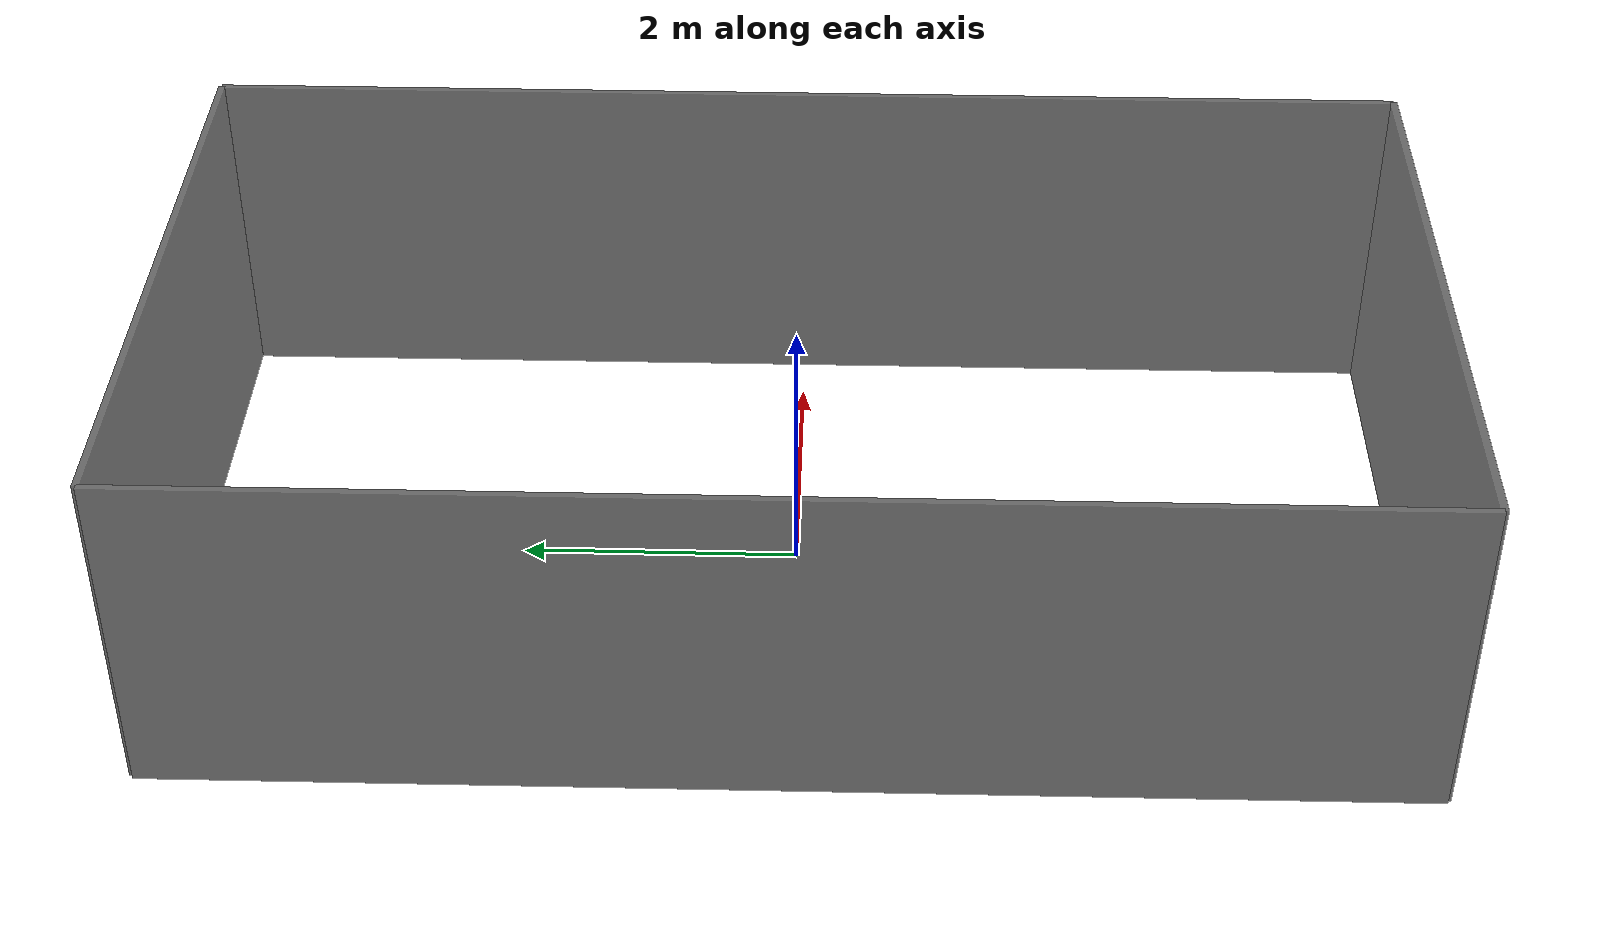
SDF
<?xml version='1.0' encoding="utf-8"?>
<sdf version='1.9'>
  <model name='walls'>
    <static>true</static>

    <!-- Wall 1, back wall of the ORL -->
    <link name='wall1'>
      <!--Position and orientation of the wall-->
      <pose>0 4.4 0 0 0 0</pose>

      <!-- Specify the shape for collisions -->
      <collision name='collision'>
        <pose>0 0 1.25 0 0 0</pose>
        <geometry>
          <box>
            <size>4.8 0.05 2.5</size>
          </box>
        </geometry>
      </collision>

      <!-- Specify the shape and material for visualization -->
      <visual name='visual'>
        <pose>0 0 1.25 0 0 0</pose>
        <geometry>
          <box>
            <size>4.8 0.05 2.5</size>
          </box>
        </geometry>
        <material>
          <ambient>0.25 0.25 0.25 0.75</ambient>
          <diffuse>0.25 0.25 0.25 0.75</diffuse>
          <specular>0 0 0 0</specular>
          <emissive>0 0 0 1</emissive>
        </material>
        <meta>
          <layer>0</layer>
        </meta>
      </visual>
    </link>

    <!-- Wall 2, GRALS rail side of ORL -->
    <link name='wall2'>
      <!--Position and orientation of the wall-->
      <pose>2.4 0 0 0 0 1.5708</pose>

      <!-- Specify the shape for collisions -->
      <collision name='collision'>
        <pose>0 0 1.25 0 0 0</pose>
        <geometry>
          <box>
            <size>8.8 0.05 2.5</size>
          </box>
        </geometry>
      </collision>

      <!-- Specify the shape and material for visualization -->
      <visual name='visual'>
        <pose>0 0 1.25 0 0 0</pose>
        <geometry>
          <box>
            <size>8.8 0.05 2.5</size>
          </box>
        </geometry>
        <material>
          <ambient>0.25 0.25 0.25 0.75</ambient>
          <diffuse>0.25 0.25 0.25 0.75</diffuse>
          <specular>0 0 0 0</specular>
          <emissive>0 0 0 1</emissive>
        </material>
        <meta>
          <layer>0</layer>
        </meta>
      </visual>
    </link>

        <!-- Wall 3, entry area to the flat floor -->
    <link name='wall3'>
      <!-- Position and orientation of the wall -->
      <pose>0 -4.4 0 0 0 0</pose>

      <!-- Specify the shape for collisions -->
      <collision name='collision'>
        <pose>0 0 1.25 0 0 0</pose>
        <geometry>
          <box>
            <size>4.8 0.05 2.5</size>
          </box>
        </geometry>
      </collision>

      <!-- Specify the shape and material for visualization -->
      <visual name='visual'>
        <pose>0 0 1.25 0 0 0</pose>
        <geometry>
          <box>
            <size>4.8 0.05 2.5</size>
          </box>
        </geometry>
        <material>
          <ambient>0.25 0.25 0.25 0.75</ambient>
          <diffuse>0.25 0.25 0.25 0.75</diffuse>
          <specular>0 0 0 0</specular>
          <emissive>0 0 0 1</emissive>
        </material>
        <meta>
          <layer>0</layer>
        </meta>
      </visual>
    </link>

    <!-- Wall 4, metal mount side wall of ORL -->
    <link name='wall4'>
      <!--Position and orientation of the wall-->
      <pose>-2.4 0 0 0 0 1.5708</pose>

      <!-- Specify the shape for collisions -->
      <collision name='collision'>
        <pose>0 0 1.25 0 0 0</pose>
        <geometry>
          <box>
            <size>8.8 0.05 2.5</size>
          </box>
        </geometry>
      </collision>

      <!-- Specify the shape and material for visualization -->
      <visual name='visual'>
        <pose>0 0 1.25 0 0 0</pose>
        <geometry>
          <box>
            <size>8.8 0.05 2.5</size>
          </box>
        </geometry>
        <material>
          <ambient>0.25 0.25 0.25 0.75</ambient>
          <diffuse>0.25 0.25 0.25 0.75</diffuse>
          <specular>0 0 0 0</specular>
          <emissive>0 0 0 1</emissive>
        </material>
        <meta>
          <layer>0</layer>
        </meta>
      </visual>
    </link>

  </model>
</sdf>
